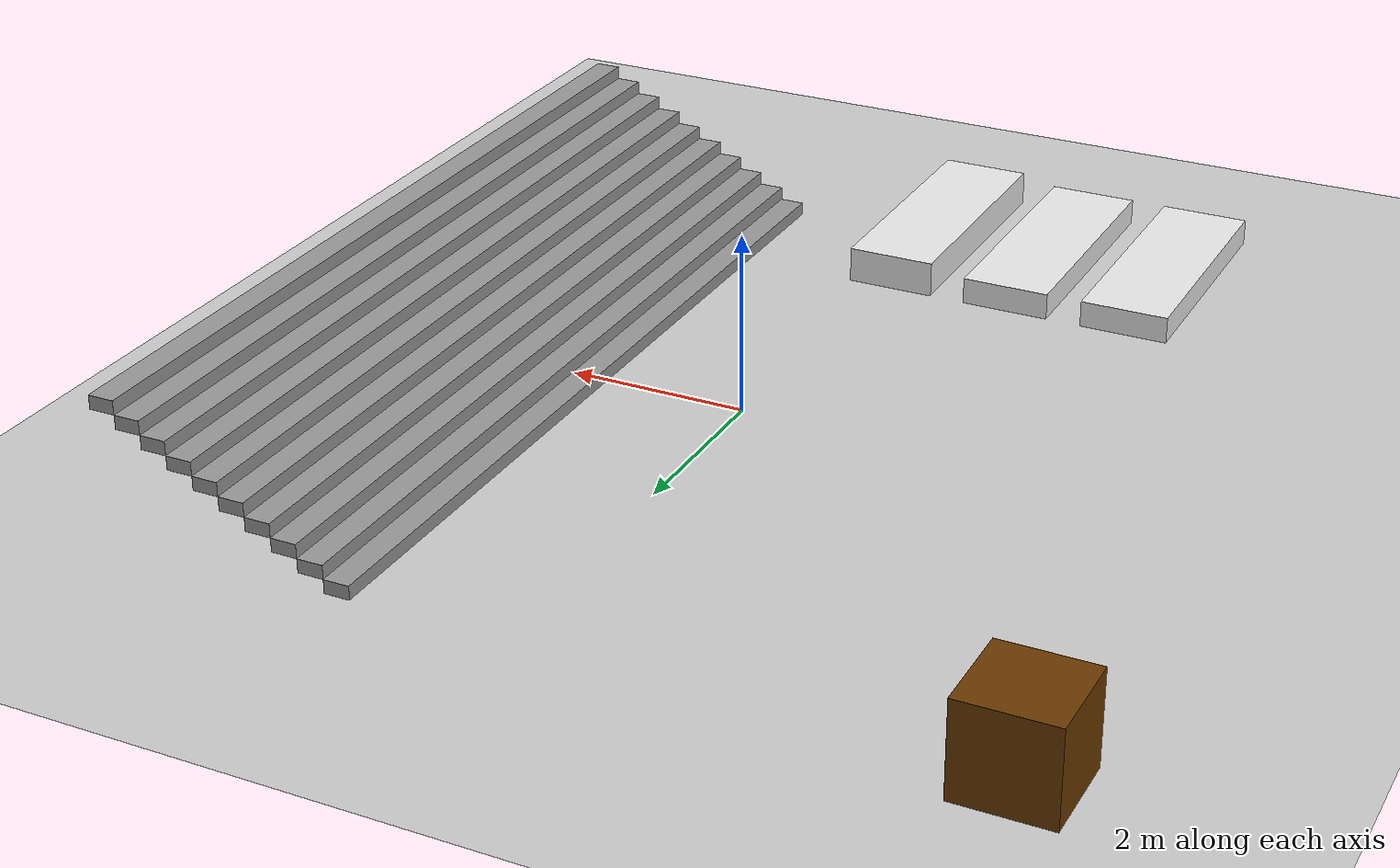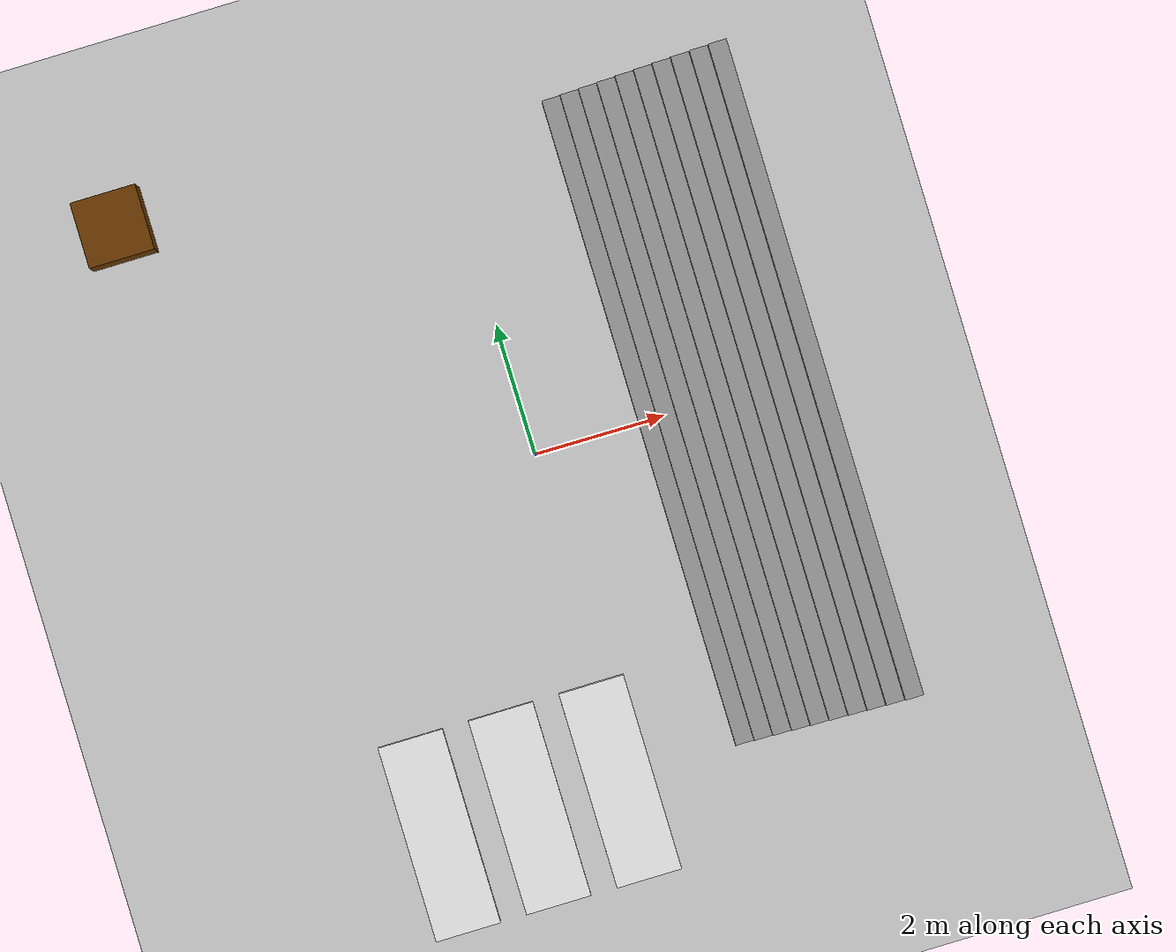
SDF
<?xml version="1.0" ?>
<sdf version="1.5">
    <world name="default">

        <physics type="ode">
            <max_step_size>0.0005</max_step_size>
            <real_time_factor>1</real_time_factor>
            <real_time_update_rate>2000</real_time_update_rate>
            <gravity>0 0 -9.81</gravity>
            <ode>
                <solver>
                    <type>quick</type>
                    <iters>50</iters>
                    <sor>1.3</sor>
                </solver>
                <constraints>
                    <cfm>0.0</cfm>
                    <erp>0.2</erp>
                    <contact_max_correcting_vel>10.0</contact_max_correcting_vel>
                    <contact_surface_layer>0.001</contact_surface_layer>
                </constraints>
            </ode>
        </physics>

        <scene>
        <sky>
            <clouds>
                <speed>12</speed>
            </clouds>
        </sky>
        </scene>
        <!-- A global light source -->
        <include>
            <uri>model://sun</uri>
        </include>
        <!-- A ground plane -->
        <include>
            <uri>model://ground_plane</uri>
        </include>
        <!-- environment blocks, obstacles or stairs -->
        <model name="static_environment">
        <static>true</static>
            <link name="static_box">
                <pose>-5 5 0.5 0 0 0</pose>
                <collision name="static_box_collision">
                    <geometry>
                        <box>
                            <size>1 1 1</size>
                        </box>
                    </geometry>
                </collision>
                <visual name="static_box_visual">
                    <geometry>
                        <box>
                            <size>1 1 1</size>
                        </box>
                    </geometry>
                    <material>
                        <ambient>0.2 0.2 0.2 1.0</ambient>
                        <diffuse>.421 0.225 0.0 1.0</diffuse>
                    </material>
                </visual>
            </link>

            <link name='Stairs'>
                <pose>3 0 0 0 0 0</pose>
                <scale>1 1 1</scale>
                <visual name='Stairs_Visual_0'>
                    <pose>-1.26 -0 0.075 0 -0 1.5708</pose>
                    <geometry>
                    <box>
                        <size>10 0.28 0.15</size>
                    </box>
                    </geometry>
                    <material>
                    <script>
                        <uri>file://media/materials/scripts/gazebo.material</uri>
                        <name>Gazebo/Grey</name>
                    </script>
                    <ambient>1 1 1 1</ambient>
                    </material>
                    <meta>
                    <layer>0</layer>
                    </meta>
                </visual>
                <collision name='Stairs_Collision_0'>
                    <geometry>
                    <box>
                        <size>10 0.28 0.15</size>
                    </box>
                    </geometry>
                    <pose>-1.26 -0 0.075 0 -0 1.5708</pose>
                </collision>
                <visual name='Stairs_Visual_1'>
                    <pose>-0.98 -0 0.225 0 -0 1.5708</pose>
                    <geometry>
                    <box>
                        <size>10 0.28 0.15</size>
                    </box>
                    </geometry>
                    <material>
                    <script>
                        <uri>file://media/materials/scripts/gazebo.material</uri>
                        <name>Gazebo/Grey</name>
                    </script>
                    <ambient>1 1 1 1</ambient>
                    </material>
                    <meta>
                    <layer>0</layer>
                    </meta>
                </visual>
                <collision name='Stairs_Collision_1'>
                    <geometry>
                    <box>
                        <size>10 0.28 0.15</size>
                    </box>
                    </geometry>
                    <pose>-0.98 -0 0.225 0 -0 1.5708</pose>
                </collision>
                <visual name='Stairs_Visual_2'>
                    <pose>-0.7 -0 0.375 0 -0 1.5708</pose>
                    <geometry>
                    <box>
                        <size>10 0.28 0.15</size>
                    </box>
                    </geometry>
                    <material>
                    <script>
                        <uri>file://media/materials/scripts/gazebo.material</uri>
                        <name>Gazebo/Grey</name>
                    </script>
                    <ambient>1 1 1 1</ambient>
                    </material>
                    <meta>
                    <layer>0</layer>
                    </meta>
                </visual>
                <collision name='Stairs_Collision_2'>
                    <geometry>
                    <box>
                        <size>10 0.28 0.15</size>
                    </box>
                    </geometry>
                    <pose>-0.7 -0 0.375 0 -0 1.5708</pose>
                </collision>
                <visual name='Stairs_Visual_3'>
                    <pose>-0.42 -0 0.525 0 -0 1.5708</pose>
                    <geometry>
                    <box>
                        <size>10 0.28 0.15</size>
                    </box>
                    </geometry>
                    <material>
                    <script>
                        <uri>file://media/materials/scripts/gazebo.material</uri>
                        <name>Gazebo/Grey</name>
                    </script>
                    <ambient>1 1 1 1</ambient>
                    </material>
                    <meta>
                    <layer>0</layer>
                    </meta>
                </visual>
                <collision name='Stairs_Collision_3'>
                    <geometry>
                    <box>
                        <size>10 0.28 0.15</size>
                    </box>
                    </geometry>
                    <pose>-0.42 -0 0.525 0 -0 1.5708</pose>
                </collision>
                <visual name='Stairs_Visual_4'>
                    <pose>-0.14 -0 0.675 0 -0 1.5708</pose>
                    <geometry>
                    <box>
                        <size>10 0.28 0.15</size>
                    </box>
                    </geometry>
                    <material>
                    <script>
                        <uri>file://media/materials/scripts/gazebo.material</uri>
                        <name>Gazebo/Grey</name>
                    </script>
                    <ambient>1 1 1 1</ambient>
                    </material>
                    <meta>
                    <layer>0</layer>
                    </meta>
                </visual>
                <collision name='Stairs_Collision_4'>
                    <geometry>
                    <box>
                        <size>10 0.28 0.15</size>
                    </box>
                    </geometry>
                    <pose>-0.14 -0 0.675 0 -0 1.5708</pose>
                </collision>
                <visual name='Stairs_Visual_5'>
                    <pose>0.14 0 0.825 0 -0 1.5708</pose>
                    <geometry>
                    <box>
                        <size>10 0.28 0.15</size>
                    </box>
                    </geometry>
                    <material>
                    <script>
                        <uri>file://media/materials/scripts/gazebo.material</uri>
                        <name>Gazebo/Grey</name>
                    </script>
                    <ambient>1 1 1 1</ambient>
                    </material>
                    <meta>
                    <layer>0</layer>
                    </meta>
                </visual>
                <collision name='Stairs_Collision_5'>
                    <geometry>
                    <box>
                        <size>10 0.28 0.15</size>
                    </box>
                    </geometry>
                    <pose>0.14 0 0.825 0 -0 1.5708</pose>
                </collision>
                <visual name='Stairs_Visual_6'>
                    <pose>0.42 0 0.975 0 -0 1.5708</pose>
                    <geometry>
                    <box>
                        <size>10 0.28 0.15</size>
                    </box>
                    </geometry>
                    <material>
                    <script>
                        <uri>file://media/materials/scripts/gazebo.material</uri>
                        <name>Gazebo/Grey</name>
                    </script>
                    <ambient>1 1 1 1</ambient>
                    </material>
                    <meta>
                    <layer>0</layer>
                    </meta>
                </visual>
                <collision name='Stairs_Collision_6'>
                    <geometry>
                    <box>
                        <size>10 0.28 0.15</size>
                    </box>
                    </geometry>
                    <pose>0.42 0 0.975 0 -0 1.5708</pose>
                </collision>
                <visual name='Stairs_Visual_7'>
                    <pose>0.7 0 1.125 0 -0 1.5708</pose>
                    <geometry>
                    <box>
                        <size>10 0.28 0.15</size>
                    </box>
                    </geometry>
                    <material>
                    <script>
                        <uri>file://media/materials/scripts/gazebo.material</uri>
                        <name>Gazebo/Grey</name>
                    </script>
                    <ambient>1 1 1 1</ambient>
                    </material>
                    <meta>
                    <layer>0</layer>
                    </meta>
                </visual>
                <collision name='Stairs_Collision_7'>
                    <geometry>
                    <box>
                        <size>10 0.28 0.15</size>
                    </box>
                    </geometry>
                    <pose>0.7 0 1.125 0 -0 1.5708</pose>
                </collision>
                <visual name='Stairs_Visual_8'>
                    <pose>0.98 0 1.275 0 -0 1.5708</pose>
                    <geometry>
                    <box>
                        <size>10 0.28 0.15</size>
                    </box>
                    </geometry>
                    <material>
                    <script>
                        <uri>file://media/materials/scripts/gazebo.material</uri>
                        <name>Gazebo/Grey</name>
                    </script>
                    <ambient>1 1 1 1</ambient>
                    </material>
                    <meta>
                    <layer>0</layer>
                    </meta>
                </visual>
                <collision name='Stairs_Collision_8'>
                    <geometry>
                    <box>
                        <size>10 0.28 0.15</size>
                    </box>
                    </geometry>
                    <pose>0.98 0 1.275 0 -0 1.5708</pose>
                </collision>
                <visual name='Stairs_Visual_9'>
                    <pose>1.26 0 1.425 0 -0 1.5708</pose>
                    <geometry>
                    <box>
                        <size>10 0.28 0.15</size>
                    </box>
                    </geometry>
                    <material>
                    <script>
                        <uri>file://media/materials/scripts/gazebo.material</uri>
                        <name>Gazebo/Grey</name>
                    </script>
                    <ambient>1 1 1 1</ambient>
                    </material>
                    <meta>
                    <layer>0</layer>
                    </meta>
                </visual>
                <collision name='Stairs_Collision_9'>
                    <geometry>
                    <box>
                        <size>10 0.28 0.15</size>
                    </box>
                    </geometry>
                    <pose>1.26 0 1.425 0 -0 1.5708</pose>
                </collision>
            </link>
        </model>

        <!-- unit_box：底面 长×宽 1.0×3.0 m（x×y），沿 +x 侧面间距 40cm；整体相对 (-3,-5) 基准 y+3m；前两个高 30cm，最后一个高 40cm；白色 -->
        <model name="unit_box_0">
            <static>true</static>
            <pose>-3.0 -5.0 0.15 0 0 0</pose>
            <link name="link">
                <collision name="collision">
                    <geometry>
                        <box>
                            <size>1.0 3.0 0.3</size>
                        </box>
                    </geometry>
                </collision>
                <visual name="visual">
                    <geometry>
                        <box>
                            <size>1.0 3.0 0.3</size>
                        </box>
                    </geometry>
                    <material>
                        <script>
                            <uri>file://media/materials/scripts/gazebo.material</uri>
                            <name>Gazebo/White</name>
                        </script>
                    </material>
                </visual>
            </link>
        </model>
        <model name="unit_box_1">
            <static>true</static>
            <pose>-1.6 -5.0 0.15 0 0 0</pose>
            <link name="link">
                <collision name="collision">
                    <geometry>
                        <box>
                            <size>1.0 3.0 0.3</size>
                        </box>
                    </geometry>
                </collision>
                <visual name="visual">
                    <geometry>
                        <box>
                            <size>1.0 3.0 0.3</size>
                        </box>
                    </geometry>
                    <material>
                        <script>
                            <uri>file://media/materials/scripts/gazebo.material</uri>
                            <name>Gazebo/White</name>
                        </script>
                    </material>
                </visual>
            </link>
        </model>
        <model name="unit_box_2">
            <static>true</static>
            <pose>-0.2 -5.0 0.2 0 0 0</pose>
            <link name="link">
                <collision name="collision">
                    <geometry>
                        <box>
                            <size>1.0 3.0 0.4</size>
                        </box>
                    </geometry>
                </collision>
                <visual name="visual">
                    <geometry>
                        <box>
                            <size>1.0 3.0 0.4</size>
                        </box>
                    </geometry>
                    <material>
                        <script>
                            <uri>file://media/materials/scripts/gazebo.material</uri>
                            <name>Gazebo/White</name>
                        </script>
                    </material>
                </visual>
            </link>
        </model>

    </world>
</sdf>
